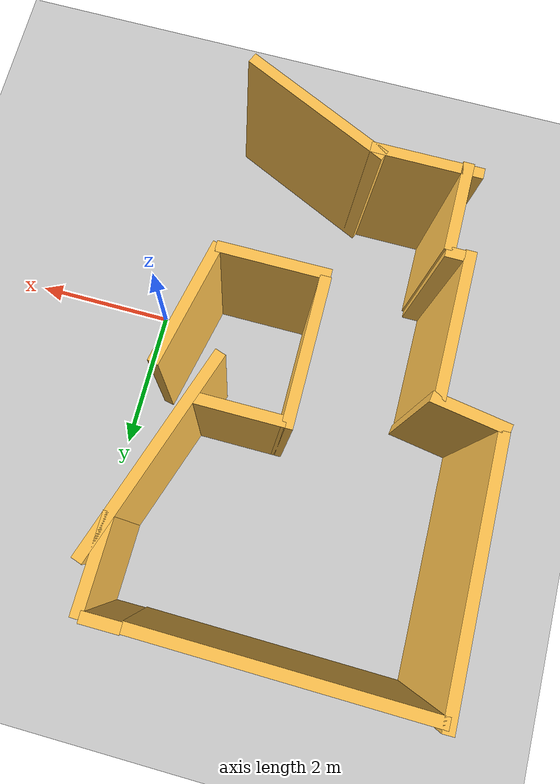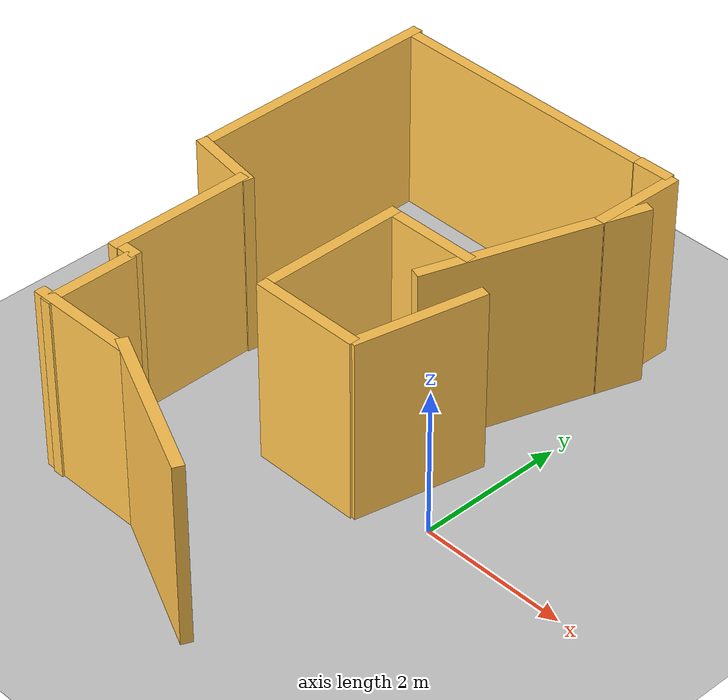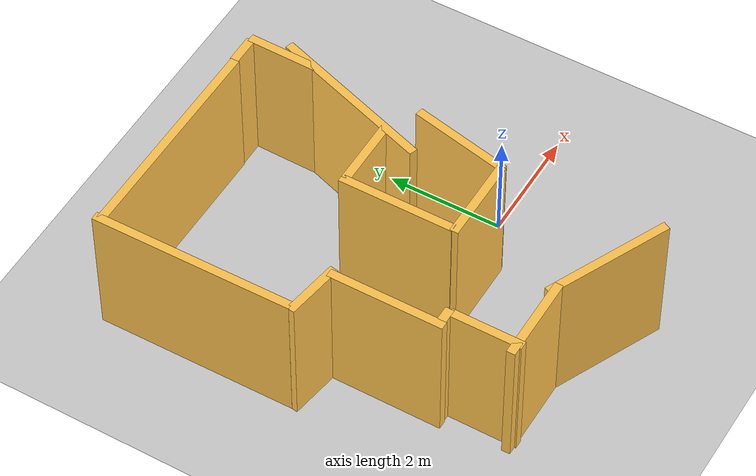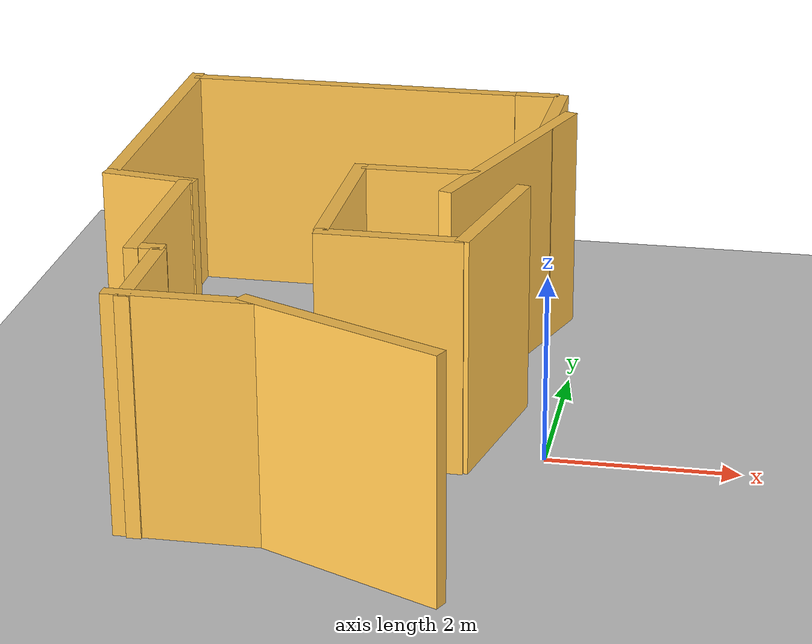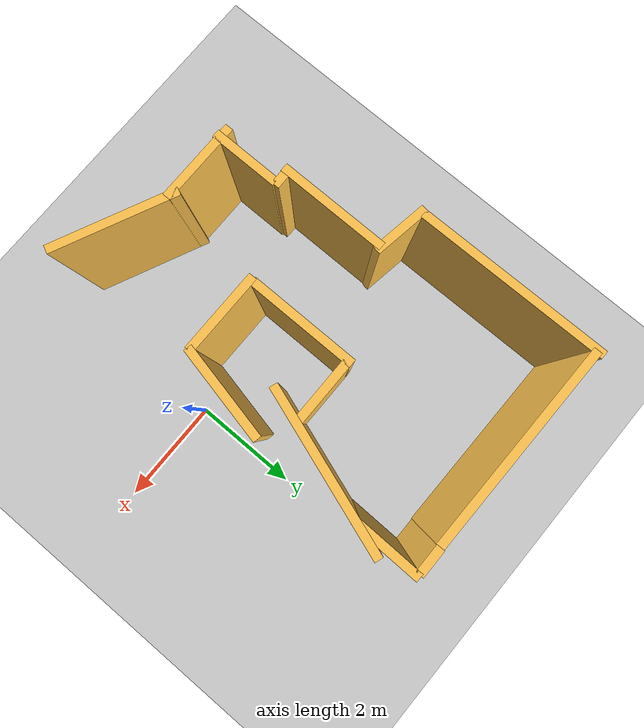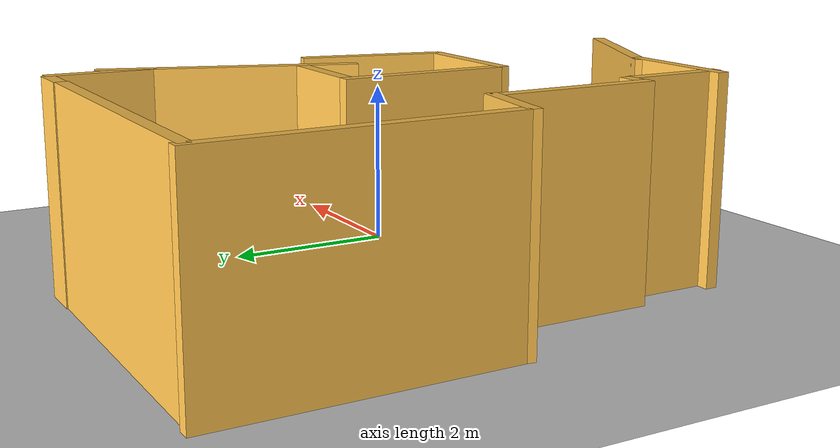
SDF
<sdf version="1.6">
 <world name="default">
  <model name="ground_plane">
   <static>1</static>
   <link name="link">
    <collision name="collision">
     <geometry><plane><normal>0 0 1</normal><size>100 100</size></plane></geometry>
     <surface>
      <contact><collide_bitmask>65535</collide_bitmask></contact>
      <friction><ode><mu>100</mu><mu2>50</mu2></ode></friction>
     </surface>
    </collision>
    <visual name="visual">
     <cast_shadows>0</cast_shadows>
     <geometry><plane><normal>0 0 1</normal><size>100 100</size></plane></geometry>
     <material>
      <script><uri>file://media/materials/scripts/gazebo.material</uri><name>Gazebo/Grey</name></script>
     </material>
    </visual>
   </link>
  </model>
  <model name="OrangeWorld_1">
   <link name="Wall_10">
    <pose>-0.865417 -0.189767 0 0 0 -1.7807</pose>
    <visual name="Wall_10_Visual">
     <pose>0 0 1.25 0 -0 0</pose>
     <geometry><box><size>1.75 0.15 2.5</size></box></geometry>
     <material>
      <script><uri>file://media/materials/scripts/gazebo.material</uri><name>Gazebo/Grey</name></script>
      <ambient>1 0.764706 0.305882 1</ambient>
      <shader type="pixel"/>
      <diffuse>0.7 0.7 0.7 1</diffuse>
      <specular>0.01 0.01 0.01 1</specular>
      <emissive>0 0 0 1</emissive>
     </material>
     <meta><layer>0</layer></meta>
    </visual>
    <collision name="Wall_10_Collision">
     <pose>0 0 1.25 0 -0 0</pose>
     <geometry><box><size>1.75 0.15 2.5</size></box></geometry>
     <surface>
      <friction>
       <ode><mu>1</mu><mu2>1</mu2><fdir1>0 0 0</fdir1><slip1>0</slip1><slip2>0</slip2></ode>
       <torsional>
        <coefficient>1</coefficient>
        <patch_radius>0</patch_radius>
        <surface_radius>0</surface_radius>
        <use_patch_radius>1</use_patch_radius>
        <ode><slip>0</slip></ode>
       </torsional>
      </friction>
      <bounce><restitution_coefficient>0</restitution_coefficient><threshold>1e+06</threshold></bounce>
      <contact>
       <collide_without_contact>0</collide_without_contact>
       <collide_without_contact_bitmask>1</collide_without_contact_bitmask>
       <collide_bitmask>1</collide_bitmask>
       <ode>
        <soft_cfm>0</soft_cfm>
        <soft_erp>0.2</soft_erp>
        <kp>1e+13</kp>
        <kd>1</kd>
        <max_vel>0.01</max_vel>
        <min_depth>0</min_depth>
       </ode>
       <bullet>
        <split_impulse>1</split_impulse>
        <split_impulse_penetration_threshold>-0.01</split_impulse_penetration_threshold>
        <soft_cfm>0</soft_cfm>
        <soft_erp>0.2</soft_erp>
        <kp>1e+13</kp>
        <kd>1</kd>
       </bullet>
      </contact>
     </surface>
    </collision>
   </link>
   <link name="Wall_11">
    <pose>-0.697064 3.1454 0 0 -0 1.55471</pose>
    <visual name="Wall_11_Visual">
     <pose>0 0 1.25 0 -0 0</pose>
     <geometry><box><size>1.25 0.15 2.5</size></box></geometry>
     <material>
      <script><uri>file://media/materials/scripts/gazebo.material</uri><name>Gazebo/Grey</name></script>
      <ambient>1 0.764706 0.305882 1</ambient>
      <shader type="pixel"/>
      <diffuse>0.7 0.7 0.7 1</diffuse>
      <specular>0.01 0.01 0.01 1</specular>
      <emissive>0 0 0 1</emissive>
     </material>
     <meta><layer>0</layer></meta>
    </visual>
    <collision name="Wall_11_Collision">
     <pose>0 0 1.25 0 -0 0</pose>
     <geometry><box><size>1.25 0.15 2.5</size></box></geometry>
     <surface>
      <friction>
       <ode><mu>1</mu><mu2>1</mu2><fdir1>0 0 0</fdir1><slip1>0</slip1><slip2>0</slip2></ode>
       <torsional>
        <coefficient>1</coefficient>
        <patch_radius>0</patch_radius>
        <surface_radius>0</surface_radius>
        <use_patch_radius>1</use_patch_radius>
        <ode><slip>0</slip></ode>
       </torsional>
      </friction>
      <bounce><restitution_coefficient>0</restitution_coefficient><threshold>1e+06</threshold></bounce>
      <contact>
       <collide_without_contact>0</collide_without_contact>
       <collide_without_contact_bitmask>1</collide_without_contact_bitmask>
       <collide_bitmask>1</collide_bitmask>
       <ode>
        <soft_cfm>0</soft_cfm>
        <soft_erp>0.2</soft_erp>
        <kp>1e+13</kp>
        <kd>1</kd>
        <max_vel>0.01</max_vel>
        <min_depth>0</min_depth>
       </ode>
       <bullet>
        <split_impulse>1</split_impulse>
        <split_impulse_penetration_threshold>-0.01</split_impulse_penetration_threshold>
        <soft_cfm>0</soft_cfm>
        <soft_erp>0.2</soft_erp>
        <kp>1e+13</kp>
        <kd>1</kd>
       </bullet>
      </contact>
     </surface>
    </collision>
   </link>
   <link name="Wall_13">
    <pose>-1.77414 -1.00395 0 0 -0 3.14159</pose>
    <visual name="Wall_13_Visual">
     <pose>0 0 1.25 0 -0 0</pose>
     <geometry><box><size>1.5 0.15 2.5</size></box></geometry>
     <material>
      <script><uri>file://media/materials/scripts/gazebo.material</uri><name>Gazebo/Grey</name></script>
      <ambient>1 0.764706 0.305882 1</ambient>
      <shader type="pixel"/>
      <diffuse>0.7 0.7 0.7 1</diffuse>
      <specular>0.01 0.01 0.01 1</specular>
      <emissive>0 0 0 1</emissive>
     </material>
     <meta><layer>0</layer></meta>
    </visual>
    <collision name="Wall_13_Collision">
     <pose>0 0 1.25 0 -0 0</pose>
     <geometry><box><size>1.5 0.15 2.5</size></box></geometry>
     <surface>
      <friction>
       <ode><mu>1</mu><mu2>1</mu2><fdir1>0 0 0</fdir1><slip1>0</slip1><slip2>0</slip2></ode>
       <torsional>
        <coefficient>1</coefficient>
        <patch_radius>0</patch_radius>
        <surface_radius>0</surface_radius>
        <use_patch_radius>1</use_patch_radius>
        <ode><slip>0</slip></ode>
       </torsional>
      </friction>
      <bounce><restitution_coefficient>0</restitution_coefficient><threshold>1e+06</threshold></bounce>
      <contact>
       <collide_without_contact>0</collide_without_contact>
       <collide_without_contact_bitmask>1</collide_without_contact_bitmask>
       <collide_bitmask>1</collide_bitmask>
       <ode>
        <soft_cfm>0</soft_cfm>
        <soft_erp>0.2</soft_erp>
        <kp>1e+13</kp>
        <kd>1</kd>
        <max_vel>0.01</max_vel>
        <min_depth>0</min_depth>
       </ode>
       <bullet>
        <split_impulse>1</split_impulse>
        <split_impulse_penetration_threshold>-0.01</split_impulse_penetration_threshold>
        <soft_cfm>0</soft_cfm>
        <soft_erp>0.2</soft_erp>
        <kp>1e+13</kp>
        <kd>1</kd>
       </bullet>
      </contact>
     </surface>
    </collision>
   </link>
   <link name="Wall_14">
    <pose>-2.46413 0.02756 0 0 -0 1.5708</pose>
    <visual name="Wall_14_Visual">
     <pose>0 0 1.25 0 -0 0</pose>
     <geometry><box><size>2 0.15 2.5</size></box></geometry>
     <material>
      <script><uri>file://media/materials/scripts/gazebo.material</uri><name>Gazebo/Grey</name></script>
      <ambient>1 0.764706 0.305882 1</ambient>
      <shader type="pixel"/>
      <diffuse>0.7 0.7 0.7 1</diffuse>
      <specular>0.01 0.01 0.01 1</specular>
      <emissive>0 0 0 1</emissive>
     </material>
     <meta><layer>0</layer></meta>
    </visual>
    <collision name="Wall_14_Collision">
     <pose>0 0 1.25 0 -0 0</pose>
     <geometry><box><size>2 0.15 2.5</size></box></geometry>
     <surface>
      <friction>
       <ode><mu>1</mu><mu2>1</mu2><fdir1>0 0 0</fdir1><slip1>0</slip1><slip2>0</slip2></ode>
       <torsional>
        <coefficient>1</coefficient>
        <patch_radius>0</patch_radius>
        <surface_radius>0</surface_radius>
        <use_patch_radius>1</use_patch_radius>
        <ode><slip>0</slip></ode>
       </torsional>
      </friction>
      <bounce><restitution_coefficient>0</restitution_coefficient><threshold>1e+06</threshold></bounce>
      <contact>
       <collide_without_contact>0</collide_without_contact>
       <collide_without_contact_bitmask>1</collide_without_contact_bitmask>
       <collide_bitmask>1</collide_bitmask>
       <ode>
        <soft_cfm>0</soft_cfm>
        <soft_erp>0.2</soft_erp>
        <kp>1e+13</kp>
        <kd>1</kd>
        <max_vel>0.01</max_vel>
        <min_depth>0</min_depth>
       </ode>
       <bullet>
        <split_impulse>1</split_impulse>
        <split_impulse_penetration_threshold>-0.01</split_impulse_penetration_threshold>
        <soft_cfm>0</soft_cfm>
        <soft_erp>0.2</soft_erp>
        <kp>1e+13</kp>
        <kd>1</kd>
       </bullet>
      </contact>
     </surface>
    </collision>
   </link>
   <link name="Wall_15">
    <pose>-1.81761 0.95256 0 0 -0 0</pose>
    <visual name="Wall_15_Visual">
     <pose>0 0 1.25 0 -0 0</pose>
     <geometry><box><size>1.25 0.15 2.5</size></box></geometry>
     <material>
      <script><uri>file://media/materials/scripts/gazebo.material</uri><name>Gazebo/Grey</name></script>
      <ambient>1 0.764706 0.305882 1</ambient>
      <shader type="pixel"/>
      <diffuse>0.7 0.7 0.7 1</diffuse>
      <specular>0.01 0.01 0.01 1</specular>
      <emissive>0 0 0 1</emissive>
     </material>
     <meta><layer>0</layer></meta>
    </visual>
    <collision name="Wall_15_Collision">
     <pose>0 0 1.25 0 -0 0</pose>
     <geometry><box><size>1.25 0.15 2.5</size></box></geometry>
     <surface>
      <friction>
       <ode><mu>1</mu><mu2>1</mu2><fdir1>0 0 0</fdir1><slip1>0</slip1><slip2>0</slip2></ode>
       <torsional>
        <coefficient>1</coefficient>
        <patch_radius>0</patch_radius>
        <surface_radius>0</surface_radius>
        <use_patch_radius>1</use_patch_radius>
        <ode><slip>0</slip></ode>
       </torsional>
      </friction>
      <bounce><restitution_coefficient>0</restitution_coefficient><threshold>1e+06</threshold></bounce>
      <contact>
       <collide_without_contact>0</collide_without_contact>
       <collide_without_contact_bitmask>1</collide_without_contact_bitmask>
       <collide_bitmask>1</collide_bitmask>
       <ode>
        <soft_cfm>0</soft_cfm>
        <soft_erp>0.2</soft_erp>
        <kp>1e+13</kp>
        <kd>1</kd>
        <max_vel>0.01</max_vel>
        <min_depth>0</min_depth>
       </ode>
       <bullet>
        <split_impulse>1</split_impulse>
        <split_impulse_penetration_threshold>-0.01</split_impulse_penetration_threshold>
        <soft_cfm>0</soft_cfm>
        <soft_erp>0.2</soft_erp>
        <kp>1e+13</kp>
        <kd>1</kd>
       </bullet>
      </contact>
     </surface>
    </collision>
   </link>
   <link name="Wall_16">
    <pose>-0.977098 1.73793 0 0 -0 1.24819</pose>
    <visual name="Wall_16_Visual">
     <pose>0 0 1.25 0 -0 0</pose>
     <geometry><box><size>2.99113 0.15 2.5</size></box></geometry>
     <material>
      <script><uri>file://media/materials/scripts/gazebo.material</uri><name>Gazebo/Grey</name></script>
      <ambient>1 0.764706 0.305882 1</ambient>
      <shader type="pixel"/>
      <diffuse>0.7 0.7 0.7 1</diffuse>
      <specular>0.01 0.01 0.01 1</specular>
      <emissive>0 0 0 1</emissive>
     </material>
     <meta><layer>0</layer></meta>
    </visual>
    <collision name="Wall_16_Collision">
     <pose>0 0 1.25 0 -0 0</pose>
     <geometry><box><size>2.99113 0.15 2.5</size></box></geometry>
     <surface>
      <friction>
       <ode><mu>1</mu><mu2>1</mu2><fdir1>0 0 0</fdir1><slip1>0</slip1><slip2>0</slip2></ode>
       <torsional>
        <coefficient>1</coefficient>
        <patch_radius>0</patch_radius>
        <surface_radius>0</surface_radius>
        <use_patch_radius>1</use_patch_radius>
        <ode><slip>0</slip></ode>
       </torsional>
      </friction>
      <bounce><restitution_coefficient>0</restitution_coefficient><threshold>1e+06</threshold></bounce>
      <contact>
       <collide_without_contact>0</collide_without_contact>
       <collide_without_contact_bitmask>1</collide_without_contact_bitmask>
       <collide_bitmask>1</collide_bitmask>
       <ode>
        <soft_cfm>0</soft_cfm>
        <soft_erp>0.2</soft_erp>
        <kp>1e+13</kp>
        <kd>1</kd>
        <max_vel>0.01</max_vel>
        <min_depth>0</min_depth>
       </ode>
       <bullet>
        <split_impulse>1</split_impulse>
        <split_impulse_penetration_threshold>-0.01</split_impulse_penetration_threshold>
        <soft_cfm>0</soft_cfm>
        <soft_erp>0.2</soft_erp>
        <kp>1e+13</kp>
        <kd>1</kd>
       </bullet>
      </contact>
     </surface>
    </collision>
   </link>
   <link name="Wall_17">
    <pose>-3.11348 3.73571 0 0 -0 3.13412</pose>
    <visual name="Wall_17_Visual">
     <pose>0 0 1.25 0 -0 0</pose>
     <geometry><box><size>3.80016 0.15 2.5</size></box></geometry>
     <material>
      <script><uri>file://media/materials/scripts/gazebo.material</uri><name>Gazebo/Grey</name></script>
      <ambient>1 0.764706 0.305882 1</ambient>
      <shader type="pixel"/>
      <diffuse>0.7 0.7 0.7 1</diffuse>
      <specular>0.01 0.01 0.01 1</specular>
      <emissive>0 0 0 1</emissive>
     </material>
     <meta><layer>0</layer></meta>
    </visual>
    <collision name="Wall_17_Collision">
     <pose>0 0 1.25 0 -0 0</pose>
     <geometry><box><size>3.80016 0.15 2.5</size></box></geometry>
     <surface>
      <friction>
       <ode><mu>1</mu><mu2>1</mu2><fdir1>0 0 0</fdir1><slip1>0</slip1><slip2>0</slip2></ode>
       <torsional>
        <coefficient>1</coefficient>
        <patch_radius>0</patch_radius>
        <surface_radius>0</surface_radius>
        <use_patch_radius>1</use_patch_radius>
        <ode><slip>0</slip></ode>
       </torsional>
      </friction>
      <bounce><restitution_coefficient>0</restitution_coefficient><threshold>1e+06</threshold></bounce>
      <contact>
       <collide_without_contact>0</collide_without_contact>
       <collide_without_contact_bitmask>1</collide_without_contact_bitmask>
       <collide_bitmask>1</collide_bitmask>
       <ode>
        <soft_cfm>0</soft_cfm>
        <soft_erp>0.2</soft_erp>
        <kp>1e+13</kp>
        <kd>1</kd>
        <max_vel>0.01</max_vel>
        <min_depth>0</min_depth>
       </ode>
       <bullet>
        <split_impulse>1</split_impulse>
        <split_impulse_penetration_threshold>-0.01</split_impulse_penetration_threshold>
        <soft_cfm>0</soft_cfm>
        <soft_erp>0.2</soft_erp>
        <kp>1e+13</kp>
        <kd>1</kd>
       </bullet>
      </contact>
     </surface>
    </collision>
   </link>
   <link name="Wall_18">
    <pose>-5.00054 2.12306 0 0 0 -1.56263</pose>
    <visual name="Wall_18_Visual">
     <pose>0 0 1.25 0 -0 0</pose>
     <geometry><box><size>3.49111 0.15 2.5</size></box></geometry>
     <material>
      <script><uri>file://media/materials/scripts/gazebo.material</uri><name>Gazebo/Grey</name></script>
      <ambient>1 0.764706 0.305882 1</ambient>
      <shader type="pixel"/>
      <diffuse>0.7 0.7 0.7 1</diffuse>
      <specular>0.01 0.01 0.01 1</specular>
      <emissive>0 0 0 1</emissive>
     </material>
     <meta><layer>0</layer></meta>
    </visual>
    <collision name="Wall_18_Collision">
     <pose>0 0 1.25 0 -0 0</pose>
     <geometry><box><size>3.49111 0.15 2.5</size></box></geometry>
     <surface>
      <friction>
       <ode><mu>1</mu><mu2>1</mu2><fdir1>0 0 0</fdir1><slip1>0</slip1><slip2>0</slip2></ode>
       <torsional>
        <coefficient>1</coefficient>
        <patch_radius>0</patch_radius>
        <surface_radius>0</surface_radius>
        <use_patch_radius>1</use_patch_radius>
        <ode><slip>0</slip></ode>
       </torsional>
      </friction>
      <bounce><restitution_coefficient>0</restitution_coefficient><threshold>1e+06</threshold></bounce>
      <contact>
       <collide_without_contact>0</collide_without_contact>
       <collide_without_contact_bitmask>1</collide_without_contact_bitmask>
       <collide_bitmask>1</collide_bitmask>
       <ode>
        <soft_cfm>0</soft_cfm>
        <soft_erp>0.2</soft_erp>
        <kp>1e+13</kp>
        <kd>1</kd>
        <max_vel>0.01</max_vel>
        <min_depth>0</min_depth>
       </ode>
       <bullet>
        <split_impulse>1</split_impulse>
        <split_impulse_penetration_threshold>-0.01</split_impulse_penetration_threshold>
        <soft_cfm>0</soft_cfm>
        <soft_erp>0.2</soft_erp>
        <kp>1e+13</kp>
        <kd>1</kd>
       </bullet>
      </contact>
     </surface>
    </collision>
   </link>
   <link name="Wall_19">
    <pose>-4.5597 0.267492 0 0 0 -0.15949</pose>
    <visual name="Wall_19_Visual">
     <pose>0 0 1.25 0 -0 0</pose>
     <geometry><box><size>1.0232 0.15 2.5</size></box></geometry>
     <material>
      <script><uri>file://media/materials/scripts/gazebo.material</uri><name>Gazebo/Grey</name></script>
      <ambient>1 0.764706 0.305882 1</ambient>
      <shader type="pixel"/>
      <diffuse>0.7 0.7 0.7 1</diffuse>
      <specular>0.01 0.01 0.01 1</specular>
      <emissive>0 0 0 1</emissive>
     </material>
     <meta><layer>0</layer></meta>
    </visual>
    <collision name="Wall_19_Collision">
     <pose>0 0 1.25 0 -0 0</pose>
     <geometry><box><size>1.0232 0.15 2.5</size></box></geometry>
     <surface>
      <friction>
       <ode><mu>1</mu><mu2>1</mu2><fdir1>0 0 0</fdir1><slip1>0</slip1><slip2>0</slip2></ode>
       <torsional>
        <coefficient>1</coefficient>
        <patch_radius>0</patch_radius>
        <surface_radius>0</surface_radius>
        <use_patch_radius>1</use_patch_radius>
        <ode><slip>0</slip></ode>
       </torsional>
      </friction>
      <bounce><restitution_coefficient>0</restitution_coefficient><threshold>1e+06</threshold></bounce>
      <contact>
       <collide_without_contact>0</collide_without_contact>
       <collide_without_contact_bitmask>1</collide_without_contact_bitmask>
       <collide_bitmask>1</collide_bitmask>
       <ode>
        <soft_cfm>0</soft_cfm>
        <soft_erp>0.2</soft_erp>
        <kp>1e+13</kp>
        <kd>1</kd>
        <max_vel>0.01</max_vel>
        <min_depth>0</min_depth>
       </ode>
       <bullet>
        <split_impulse>1</split_impulse>
        <split_impulse_penetration_threshold>-0.01</split_impulse_penetration_threshold>
        <soft_cfm>0</soft_cfm>
        <soft_erp>0.2</soft_erp>
        <kp>1e+13</kp>
        <kd>1</kd>
       </bullet>
      </contact>
     </surface>
    </collision>
   </link>
   <link name="Wall_20">
    <pose>-4.15939 -0.779132 0 0 0 -1.5708</pose>
    <visual name="Wall_20_Visual">
     <pose>0 0 1.25 0 -0 0</pose>
     <geometry><box><size>2 0.15 2.5</size></box></geometry>
     <material>
      <script><uri>file://media/materials/scripts/gazebo.material</uri><name>Gazebo/Grey</name></script>
      <ambient>1 0.764706 0.305882 1</ambient>
      <shader type="pixel"/>
      <diffuse>0.7 0.7 0.7 1</diffuse>
      <specular>0.01 0.01 0.01 1</specular>
      <emissive>0 0 0 1</emissive>
     </material>
     <meta><layer>0</layer></meta>
    </visual>
    <collision name="Wall_20_Collision">
     <pose>0 0 1.25 0 -0 0</pose>
     <geometry><box><size>2 0.15 2.5</size></box></geometry>
     <surface>
      <friction>
       <ode><mu>1</mu><mu2>1</mu2><fdir1>0 0 0</fdir1><slip1>0</slip1><slip2>0</slip2></ode>
       <torsional>
        <coefficient>1</coefficient>
        <patch_radius>0</patch_radius>
        <surface_radius>0</surface_radius>
        <use_patch_radius>1</use_patch_radius>
        <ode><slip>0</slip></ode>
       </torsional>
      </friction>
      <bounce><restitution_coefficient>0</restitution_coefficient><threshold>1e+06</threshold></bounce>
      <contact>
       <collide_without_contact>0</collide_without_contact>
       <collide_without_contact_bitmask>1</collide_without_contact_bitmask>
       <collide_bitmask>1</collide_bitmask>
       <ode>
        <soft_cfm>0</soft_cfm>
        <soft_erp>0.2</soft_erp>
        <kp>1e+13</kp>
        <kd>1</kd>
        <max_vel>0.01</max_vel>
        <min_depth>0</min_depth>
       </ode>
       <bullet>
        <split_impulse>1</split_impulse>
        <split_impulse_penetration_threshold>-0.01</split_impulse_penetration_threshold>
        <soft_cfm>0</soft_cfm>
        <soft_erp>0.2</soft_erp>
        <kp>1e+13</kp>
        <kd>1</kd>
       </bullet>
      </contact>
     </surface>
    </collision>
   </link>
   <link name="Wall_21">
    <pose>-3.96799 -1.69168 0 0 -0 3.14159</pose>
    <visual name="Wall_21_Visual">
     <pose>0 0 1.25 0 -0 0</pose>
     <geometry><box><size>0.25 0.15 2.5</size></box></geometry>
     <material>
      <script><uri>file://media/materials/scripts/gazebo.material</uri><name>Gazebo/Grey</name></script>
      <ambient>1 0.764706 0.305882 1</ambient>
      <shader type="pixel"/>
      <diffuse>0.7 0.7 0.7 1</diffuse>
      <specular>0.01 0.01 0.01 1</specular>
      <emissive>0 0 0 1</emissive>
     </material>
     <meta><layer>0</layer></meta>
    </visual>
    <collision name="Wall_21_Collision">
     <pose>0 0 1.25 0 -0 0</pose>
     <geometry><box><size>0.25 0.15 2.5</size></box></geometry>
     <surface>
      <friction>
       <ode><mu>1</mu><mu2>1</mu2><fdir1>0 0 0</fdir1><slip1>0</slip1><slip2>0</slip2></ode>
       <torsional>
        <coefficient>1</coefficient>
        <patch_radius>0</patch_radius>
        <surface_radius>0</surface_radius>
        <use_patch_radius>1</use_patch_radius>
        <ode><slip>0</slip></ode>
       </torsional>
      </friction>
      <bounce><restitution_coefficient>0</restitution_coefficient><threshold>1e+06</threshold></bounce>
      <contact>
       <collide_without_contact>0</collide_without_contact>
       <collide_without_contact_bitmask>1</collide_without_contact_bitmask>
       <collide_bitmask>1</collide_bitmask>
       <ode>
        <soft_cfm>0</soft_cfm>
        <soft_erp>0.2</soft_erp>
        <kp>1e+13</kp>
        <kd>1</kd>
        <max_vel>0.01</max_vel>
        <min_depth>0</min_depth>
       </ode>
       <bullet>
        <split_impulse>1</split_impulse>
        <split_impulse_penetration_threshold>-0.01</split_impulse_penetration_threshold>
        <soft_cfm>0</soft_cfm>
        <soft_erp>0.2</soft_erp>
        <kp>1e+13</kp>
        <kd>1</kd>
       </bullet>
      </contact>
     </surface>
    </collision>
   </link>
   <link name="Wall_22">
    <pose>-3.89127 -2.34286 0 0 0 -1.5708</pose>
    <visual name="Wall_22_Visual">
     <pose>0 0 1.25 0 -0 0</pose>
     <geometry><box><size>1.25 0.15 2.5</size></box></geometry>
     <material>
      <script><uri>file://media/materials/scripts/gazebo.material</uri><name>Gazebo/Grey</name></script>
      <ambient>1 0.764706 0.305882 1</ambient>
      <shader type="pixel"/>
      <diffuse>0.7 0.7 0.7 1</diffuse>
      <specular>0.01 0.01 0.01 1</specular>
      <emissive>0 0 0 1</emissive>
     </material>
     <meta><layer>0</layer></meta>
    </visual>
    <collision name="Wall_22_Collision">
     <pose>0 0 1.25 0 -0 0</pose>
     <geometry><box><size>1.25 0.15 2.5</size></box></geometry>
     <surface>
      <friction>
       <ode><mu>1</mu><mu2>1</mu2><fdir1>0 0 0</fdir1><slip1>0</slip1><slip2>0</slip2></ode>
       <torsional>
        <coefficient>1</coefficient>
        <patch_radius>0</patch_radius>
        <surface_radius>0</surface_radius>
        <use_patch_radius>1</use_patch_radius>
        <ode><slip>0</slip></ode>
       </torsional>
      </friction>
      <bounce><restitution_coefficient>0</restitution_coefficient><threshold>1e+06</threshold></bounce>
      <contact>
       <collide_without_contact>0</collide_without_contact>
       <collide_without_contact_bitmask>1</collide_without_contact_bitmask>
       <collide_bitmask>1</collide_bitmask>
       <ode>
        <soft_cfm>0</soft_cfm>
        <soft_erp>0.2</soft_erp>
        <kp>1e+13</kp>
        <kd>1</kd>
        <max_vel>0.01</max_vel>
        <min_depth>0</min_depth>
       </ode>
       <bullet>
        <split_impulse>1</split_impulse>
        <split_impulse_penetration_threshold>-0.01</split_impulse_penetration_threshold>
        <soft_cfm>0</soft_cfm>
        <soft_erp>0.2</soft_erp>
        <kp>1e+13</kp>
        <kd>1</kd>
       </bullet>
      </contact>
     </surface>
    </collision>
   </link>
   <link name="Wall_23">
    <pose>-3.35896 -2.86613 0 0 -0 0</pose>
    <visual name="Wall_23_Visual">
     <pose>0 0 1.25 0 -0 0</pose>
     <geometry><box><size>1.5 0.15 2.5</size></box></geometry>
     <material>
      <script><uri>file://media/materials/scripts/gazebo.material</uri><name>Gazebo/Grey</name></script>
      <ambient>1 0.764706 0.305882 1</ambient>
      <shader type="pixel"/>
      <diffuse>0.7 0.7 0.7 1</diffuse>
      <specular>0.01 0.01 0.01 1</specular>
      <emissive>0 0 0 1</emissive>
     </material>
     <meta><layer>0</layer></meta>
    </visual>
    <collision name="Wall_23_Collision">
     <pose>0 0 1.25 0 -0 0</pose>
     <geometry><box><size>1.5 0.15 2.5</size></box></geometry>
     <surface>
      <friction>
       <ode><mu>1</mu><mu2>1</mu2><fdir1>0 0 0</fdir1><slip1>0</slip1><slip2>0</slip2></ode>
       <torsional>
        <coefficient>1</coefficient>
        <patch_radius>0</patch_radius>
        <surface_radius>0</surface_radius>
        <use_patch_radius>1</use_patch_radius>
        <ode><slip>0</slip></ode>
       </torsional>
      </friction>
      <bounce><restitution_coefficient>0</restitution_coefficient><threshold>1e+06</threshold></bounce>
      <contact>
       <collide_without_contact>0</collide_without_contact>
       <collide_without_contact_bitmask>1</collide_without_contact_bitmask>
       <collide_bitmask>1</collide_bitmask>
       <ode>
        <soft_cfm>0</soft_cfm>
        <soft_erp>0.2</soft_erp>
        <kp>1e+13</kp>
        <kd>1</kd>
        <max_vel>0.01</max_vel>
        <min_depth>0</min_depth>
       </ode>
       <bullet>
        <split_impulse>1</split_impulse>
        <split_impulse_penetration_threshold>-0.01</split_impulse_penetration_threshold>
        <soft_cfm>0</soft_cfm>
        <soft_erp>0.2</soft_erp>
        <kp>1e+13</kp>
        <kd>1</kd>
       </bullet>
      </contact>
     </surface>
    </collision>
   </link>
   <link name="Wall_24">
    <pose>-1.79478 -3.25662 0 0 0 -0.438106</pose>
    <visual name="Wall_24_Visual">
     <pose>0 0 1.25 0 -0 0</pose>
     <geometry><box><size>2.25 0.15 2.5</size></box></geometry>
     <material>
      <script><uri>file://media/materials/scripts/gazebo.material</uri><name>Gazebo/Grey</name></script>
      <ambient>1 0.764706 0.305882 1</ambient>
      <shader type="pixel"/>
      <diffuse>0.7 0.7 0.7 1</diffuse>
      <specular>0.01 0.01 0.01 1</specular>
      <emissive>0 0 0 1</emissive>
     </material>
     <meta><layer>0</layer></meta>
    </visual>
    <collision name="Wall_24_Collision">
     <pose>0 0 1.25 0 -0 0</pose>
     <geometry><box><size>2.25 0.15 2.5</size></box></geometry>
     <surface>
      <friction>
       <ode><mu>1</mu><mu2>1</mu2><fdir1>0 0 0</fdir1><slip1>0</slip1><slip2>0</slip2></ode>
       <torsional>
        <coefficient>1</coefficient>
        <patch_radius>0</patch_radius>
        <surface_radius>0</surface_radius>
        <use_patch_radius>1</use_patch_radius>
        <ode><slip>0</slip></ode>
       </torsional>
      </friction>
      <bounce><restitution_coefficient>0</restitution_coefficient><threshold>1e+06</threshold></bounce>
      <contact>
       <collide_without_contact>0</collide_without_contact>
       <collide_without_contact_bitmask>1</collide_without_contact_bitmask>
       <collide_bitmask>1</collide_bitmask>
       <ode>
        <soft_cfm>0</soft_cfm>
        <soft_erp>0.2</soft_erp>
        <kp>1e+13</kp>
        <kd>1</kd>
        <max_vel>0.01</max_vel>
        <min_depth>0</min_depth>
       </ode>
       <bullet>
        <split_impulse>1</split_impulse>
        <split_impulse_penetration_threshold>-0.01</split_impulse_penetration_threshold>
        <soft_cfm>0</soft_cfm>
        <soft_erp>0.2</soft_erp>
        <kp>1e+13</kp>
        <kd>1</kd>
       </bullet>
      </contact>
     </surface>
    </collision>
   </link>
   <link name="Wall_9">
    <pose>-0.971434 3.73552 0 0 -0 -3.13964</pose>
    <visual name="Wall_9_Visual">
     <pose>0 0 1.25 0 -0 0</pose>
     <geometry><box><size>0.5 0.15 2.5</size></box></geometry>
     <material>
      <script><uri>file://media/materials/scripts/gazebo.material</uri><name>Gazebo/Grey</name></script>
      <ambient>1 0.764706 0.305882 1</ambient>
      <shader type="pixel"/>
      <diffuse>0.7 0.7 0.7 1</diffuse>
      <specular>0.01 0.01 0.01 1</specular>
      <emissive>0 0 0 1</emissive>
     </material>
     <meta><layer>0</layer></meta>
    </visual>
    <collision name="Wall_9_Collision">
     <pose>0 0 1.25 0 -0 0</pose>
     <geometry><box><size>0.5 0.15 2.5</size></box></geometry>
     <surface>
      <friction>
       <ode><mu>1</mu><mu2>1</mu2><fdir1>0 0 0</fdir1><slip1>0</slip1><slip2>0</slip2></ode>
       <torsional>
        <coefficient>1</coefficient>
        <patch_radius>0</patch_radius>
        <surface_radius>0</surface_radius>
        <use_patch_radius>1</use_patch_radius>
        <ode><slip>0</slip></ode>
       </torsional>
      </friction>
      <bounce><restitution_coefficient>0</restitution_coefficient><threshold>1e+06</threshold></bounce>
      <contact>
       <collide_without_contact>0</collide_without_contact>
       <collide_without_contact_bitmask>1</collide_without_contact_bitmask>
       <collide_bitmask>1</collide_bitmask>
       <ode>
        <soft_cfm>0</soft_cfm>
        <soft_erp>0.2</soft_erp>
        <kp>1e+13</kp>
        <kd>1</kd>
        <max_vel>0.01</max_vel>
        <min_depth>0</min_depth>
       </ode>
       <bullet>
        <split_impulse>1</split_impulse>
        <split_impulse_penetration_threshold>-0.01</split_impulse_penetration_threshold>
        <soft_cfm>0</soft_cfm>
        <soft_erp>0.2</soft_erp>
        <kp>1e+13</kp>
        <kd>1</kd>
       </bullet>
      </contact>
     </surface>
    </collision>
   </link>
   <static>1</static>
   <pose>0.259466 0.59963 0 0 -0 0</pose>
  </model>
 </world>
</sdf>
